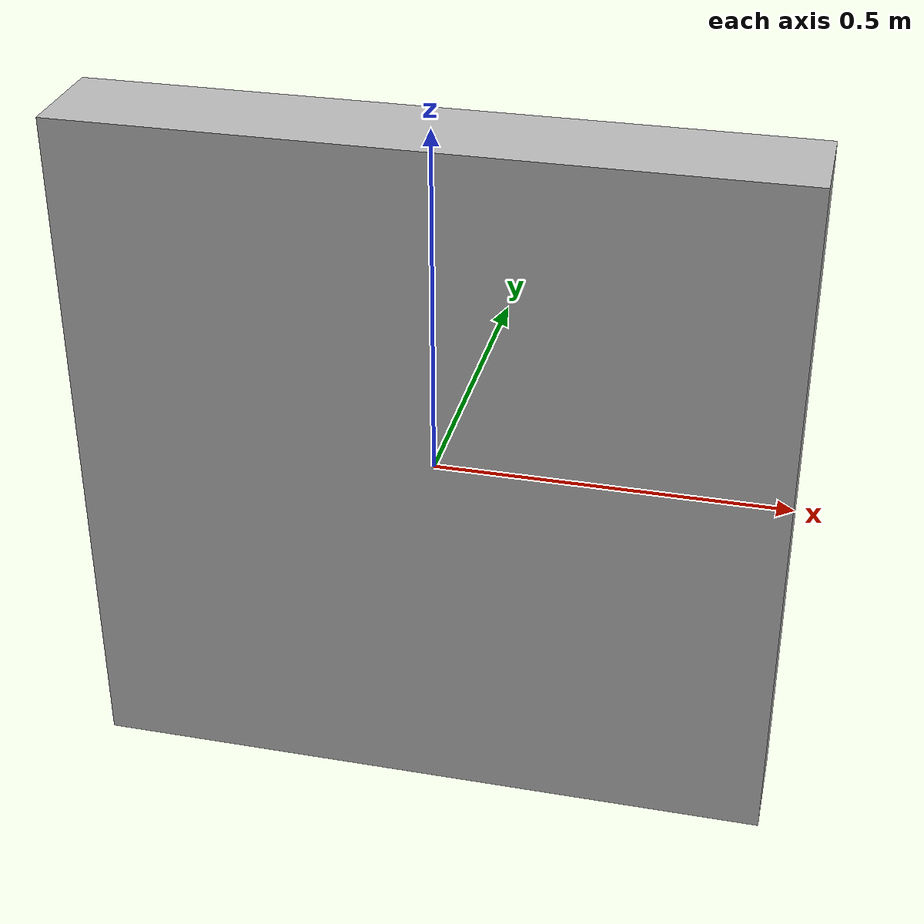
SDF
<?xml version="1.6" ?>
<sdf version="1.6">
  <model name="poster">
    <static>true</static>
    <link name="poster_link">
      <pose>0 0 0 0 0 0</pose>

      <collision name="poster_collision">
        <geometry>
          <box>
            <size>1 0.15 1</size>
          </box>
        </geometry>
        <surface>
          <contact>
            <collide_without_contact>true</collide_without_contact>
          </contact>
        </surface>
      </collision>

      <visual name="poster_visual">
        <geometry>
          <box>
            <size>1 0.15 1</size>
          </box>
        </geometry>
        <material>
          <script>
            <uri>model://poster/materials/scripts</uri>
            <uri>model://poster/materials/textures</uri>
            <name>Poster/PosterTexture</name>
          </script>
        </material>
      </visual>
    </link>
  </model>
</sdf>
